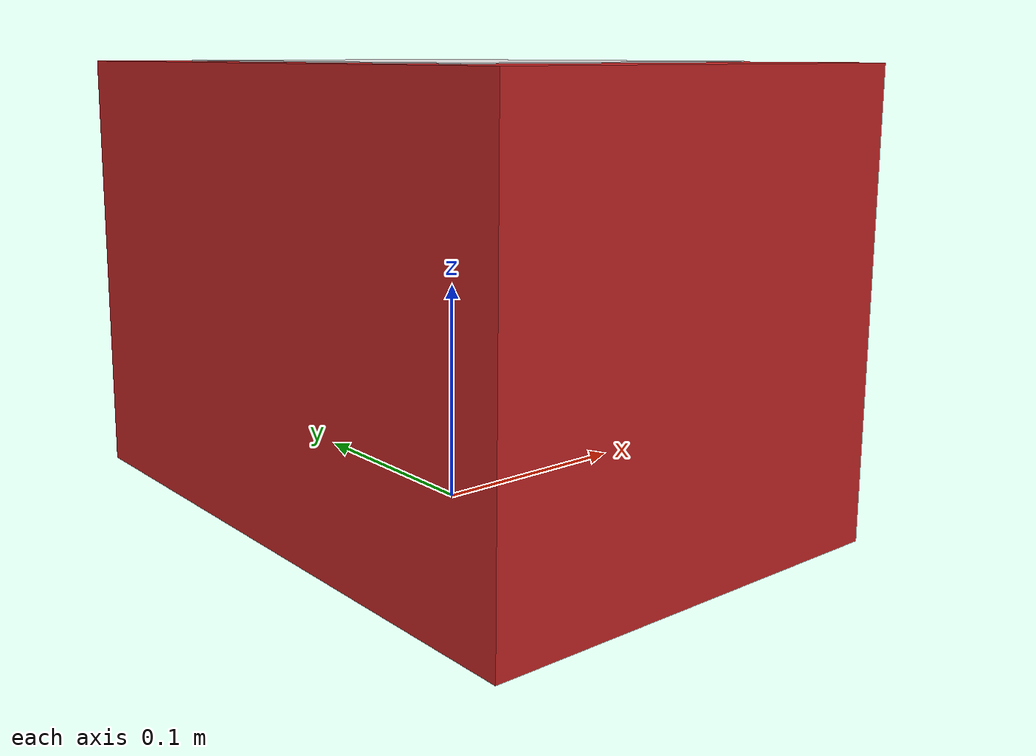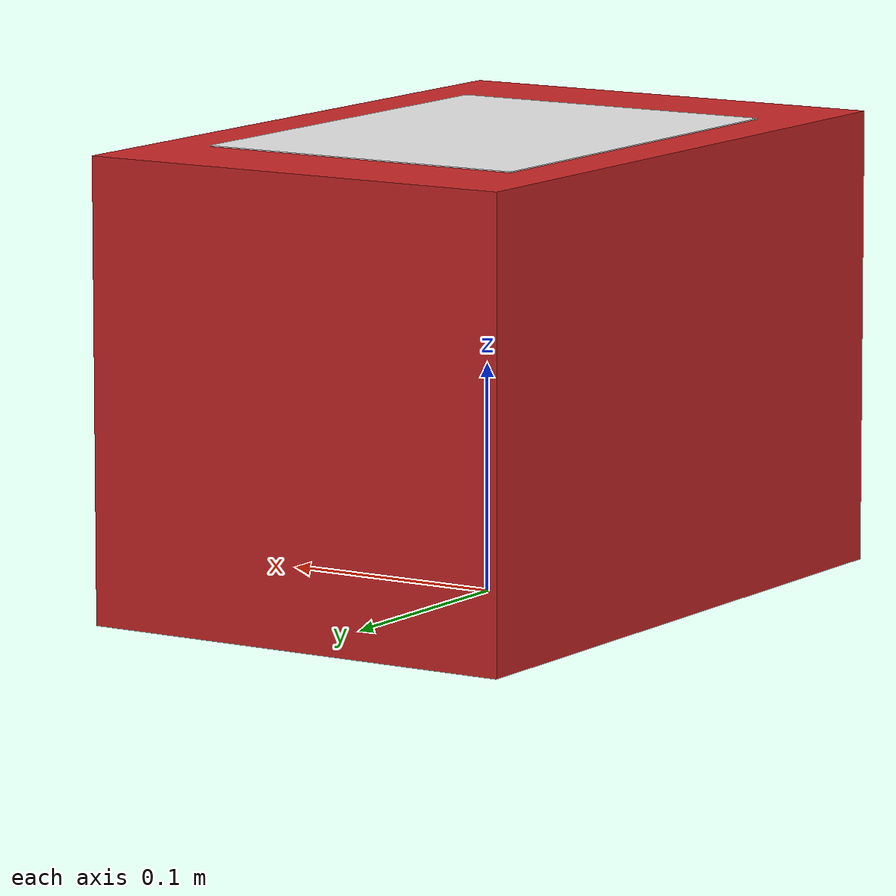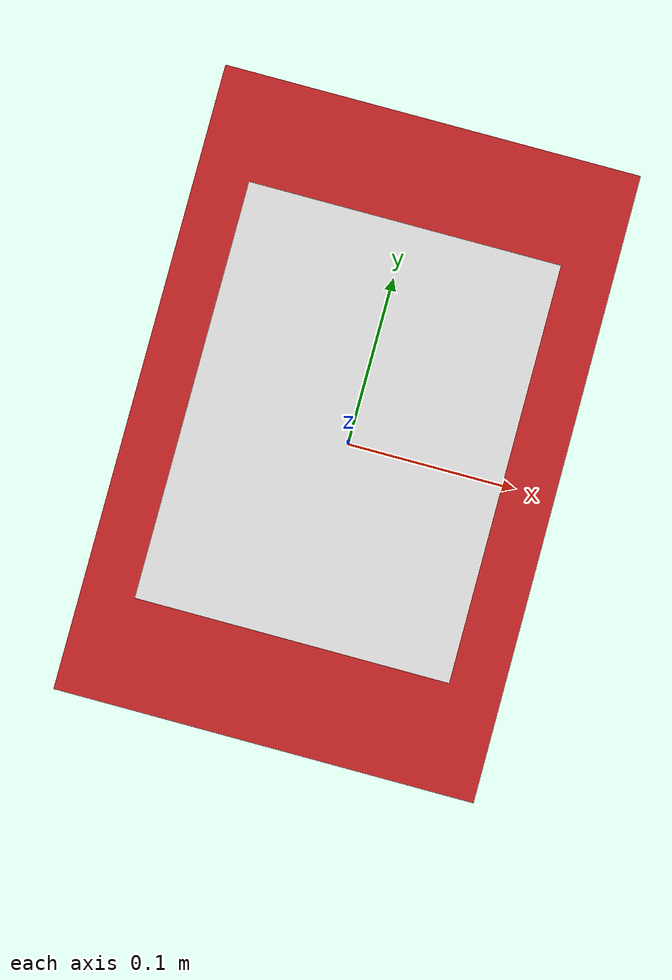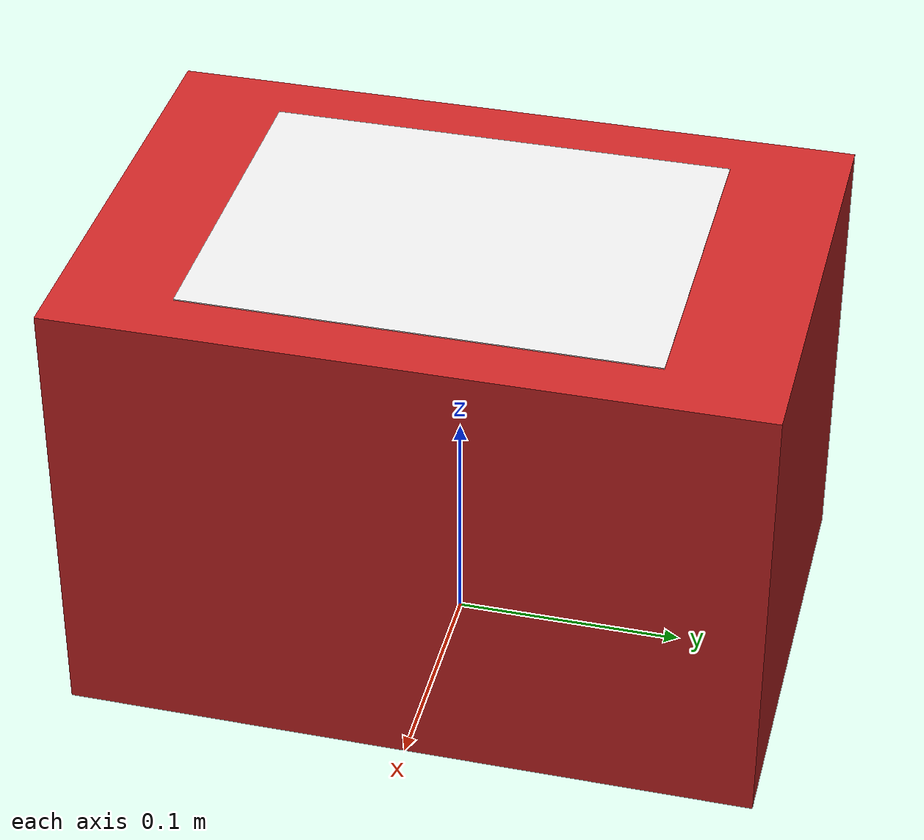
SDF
<?xml version='1.0'?>
<sdf version='1.6'>

<model name="single_red_brick">
  <link name="Red_brick_link">
    <pose frame=''>0 0 0.1 0 -0 0</pose>

    <inertial>
		  <mass>0.01</mass>
      <inertia>
			  <ixx>0.0001083330</ixx>
        <ixy>0</ixy>
			  <ixz>0</ixz>
        <iyy>0.0000666667</iyy>
			  <iyz>0</iyz>
        <izz>0.0001083330</izz>
		  </inertia>
    </inertial>

    <visual name="visual">
	    <material>
		    <script>
			    <uri>gazebo.material</uri>
			      <name>Gazebo/Red</name>
		    </script>
	    </material>
      <geometry>
        <box>
          <size>0.2 0.3 0.2</size>
        </box>
      </geometry>
    </visual>

    <visual name="visual FM plate">
      <pose>0 0 0.1 0 -0 0</pose>
		  <material>
			  <script>
				  <uri>gazebo.material</uri>
				  <name>Gazebo/White</name>
			  </script>
		  </material>
      <geometry>
        <box>
          <size>0.150 0.200 0.001</size>
        </box>
      </geometry>
    </visual>

    <collision name="collision">
      <geometry>
        <box>
          <size>0.2 0.3 0.2</size>
        </box>
      </geometry>
    </collision>
  </link>
</model>

</sdf>
